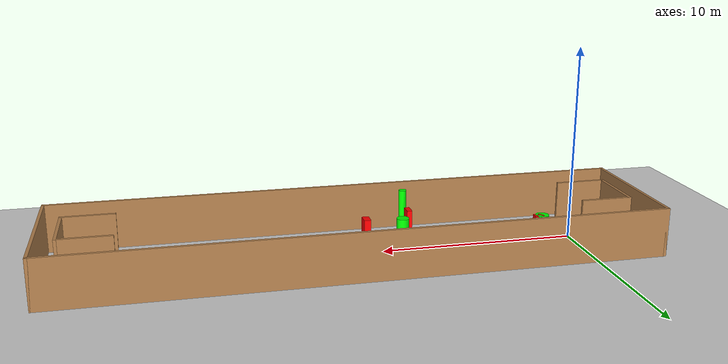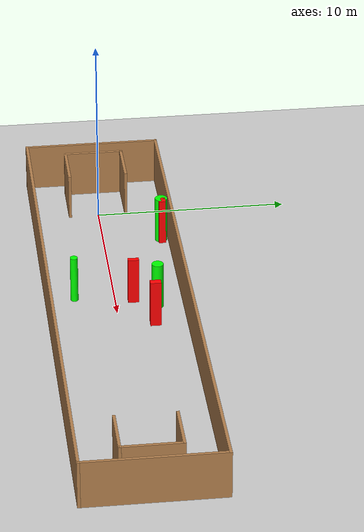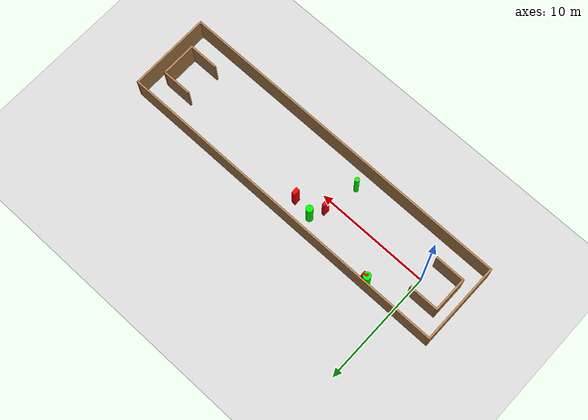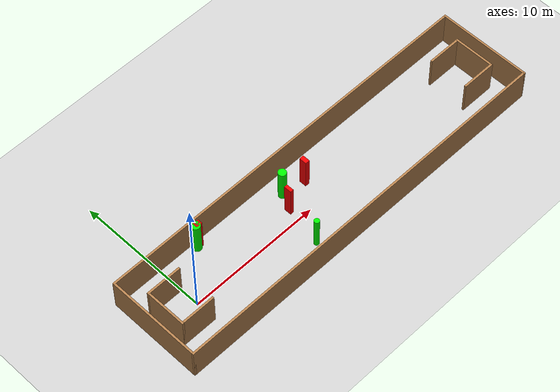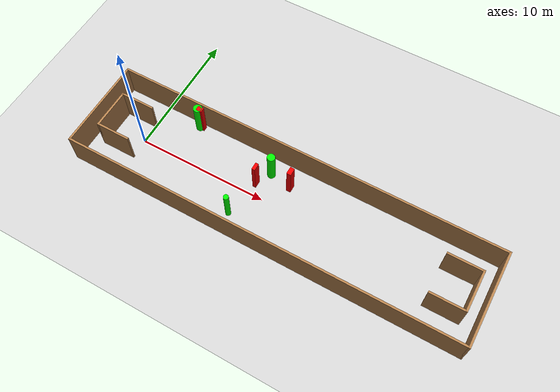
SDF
<sdf version="1.7">
 <world name="default">
  <light name="sun" type="directional">
   <pose>0 0 10 0 -0 0</pose>
   <diffuse>0.8 0.8 0.8 1</diffuse>
   <specular>0.2 0.2 0.2 1</specular>
   <attenuation>
    <range>1000</range>
    <constant>0.9</constant>
    <linear>0.01</linear>
    <quadratic>0.001</quadratic>
   </attenuation>
   <direction>-0.5 0.1 -0.9</direction>
   <spot><inner_angle>0</inner_angle><outer_angle>0</outer_angle><falloff>0</falloff></spot>
  </light>
  <model name="ground_plane">
   <static>1</static>
   <link name="link">
    <collision name="collision">
     <geometry><plane><normal>0 0 1</normal><size>100 100</size></plane></geometry>
     <surface>
      <contact><collide_bitmask>65535</collide_bitmask></contact>
      <friction><ode><mu>100</mu><mu2>50</mu2></ode></friction>
     </surface>
    </collision>
    <visual name="visual">
     <cast_shadows>0</cast_shadows>
     <geometry><plane><normal>0 0 1</normal><size>100 100</size></plane></geometry>
     <material>
      <script><uri>file://media/materials/scripts/gazebo.material</uri><name>Gazebo/Grey</name></script>
     </material>
    </visual>
   </link>
  </model>
  <gravity>0 0 -9.8</gravity>
  <magnetic_field>6e-06 2.3e-05 -4.2e-05</magnetic_field>
  <atmosphere type="adiabatic"/>
  <physics type="ode">
   <max_step_size>0.001</max_step_size>
   <real_time_factor>1</real_time_factor>
   <real_time_update_rate>1000</real_time_update_rate>
  </physics>
  <scene><ambient>0.4 0.4 0.4 1</ambient><background>0.7 0.7 0.7 1</background><shadows>1</shadows></scene>
  <spherical_coordinates>
   <surface_model>EARTH_WGS84</surface_model>
   <latitude_deg>0</latitude_deg>
   <longitude_deg>0</longitude_deg>
   <elevation>0</elevation>
   <heading_deg>0</heading_deg>
  </spherical_coordinates>
  <model name="my_base_walls">
   <link name="Wall_0">
    <collision name="Wall_0_Collision">
     <geometry><box><size>7.15 0.15 2.5</size></box></geometry>
     <pose>0 0 1.25 0 -0 0</pose>
    </collision>
    <visual name="Wall_0_Visual">
     <pose>0 0 1.25 0 -0 0</pose>
     <geometry><box><size>7.15 0.15 2.5</size></box></geometry>
     <material>
      <script><uri>file://media/materials/scripts/gazebo.material</uri><name>Gazebo/Wood</name></script>
      <ambient>1 1 1 1</ambient>
     </material>
     <meta><layer>0</layer></meta>
    </visual>
    <pose>-15 0 0 0 -0 1.5708</pose>
   </link>
   <link name="Wall_10">
    <collision name="Wall_10_Collision">
     <geometry><box><size>2.65 0.15 2.5</size></box></geometry>
     <pose>0 0 1.25 0 -0 0</pose>
    </collision>
    <visual name="Wall_10_Visual">
     <pose>0 0 1.25 0 -0 0</pose>
     <geometry><box><size>2.65 0.15 2.5</size></box></geometry>
     <material>
      <script><uri>file://media/materials/scripts/gazebo.material</uri><name>Gazebo/Wood</name></script>
      <ambient>1 1 1 1</ambient>
     </material>
     <meta><layer>0</layer></meta>
    </visual>
    <pose>-12.75 -1.5 0 0 -0 0</pose>
   </link>
   <link name="Wall_12">
    <collision name="Wall_12_Collision">
     <geometry><box><size>2.65 0.15 2.5</size></box></geometry>
     <pose>0 0 1.25 0 -0 0</pose>
    </collision>
    <visual name="Wall_12_Visual">
     <pose>0 0 1.25 0 -0 0</pose>
     <geometry><box><size>2.65 0.15 2.5</size></box></geometry>
     <material>
      <script><uri>file://media/materials/scripts/gazebo.material</uri><name>Gazebo/Wood</name></script>
      <ambient>1 1 1 1</ambient>
     </material>
     <meta><layer>0</layer></meta>
    </visual>
    <pose>-12.75 1.5 0 0 -0 0</pose>
   </link>
   <link name="Wall_14">
    <collision name="Wall_14_Collision">
     <geometry><box><size>3.15 0.15 2.5</size></box></geometry>
     <pose>0 0 1.25 0 -0 0</pose>
    </collision>
    <visual name="Wall_14_Visual">
     <pose>0 0 1.25 0 -0 0</pose>
     <geometry><box><size>3.15 0.15 2.5</size></box></geometry>
     <material>
      <script><uri>file://media/materials/scripts/gazebo.material</uri><name>Gazebo/Wood</name></script>
      <ambient>1 1 1 1</ambient>
     </material>
     <meta><layer>0</layer></meta>
    </visual>
    <pose>14 0 0 0 -0 -1.5708</pose>
   </link>
   <link name="Wall_15">
    <collision name="Wall_15_Collision">
     <geometry><box><size>2.65 0.15 2.5</size></box></geometry>
     <pose>0 0 1.25 0 -0 0</pose>
    </collision>
    <visual name="Wall_15_Visual">
     <pose>0 0 1.25 0 -0 0</pose>
     <geometry><box><size>2.65 0.15 2.5</size></box></geometry>
     <material>
      <script><uri>file://media/materials/scripts/gazebo.material</uri><name>Gazebo/Wood</name></script>
      <ambient>1 1 1 1</ambient>
     </material>
     <meta><layer>0</layer></meta>
    </visual>
    <pose>12.75 -1.5 0 0 -0 3.14159</pose>
   </link>
   <link name="Wall_17">
    <collision name="Wall_17_Collision">
     <geometry><box><size>2.65 0.15 2.5</size></box></geometry>
     <pose>0 0 1.25 0 -0 0</pose>
    </collision>
    <visual name="Wall_17_Visual">
     <pose>0 0 1.25 0 -0 0</pose>
     <geometry><box><size>2.65 0.15 2.5</size></box></geometry>
     <material>
      <script><uri>file://media/materials/scripts/gazebo.material</uri><name>Gazebo/Wood</name></script>
      <ambient>1 1 1 1</ambient>
     </material>
     <meta><layer>0</layer></meta>
    </visual>
    <pose>12.75 1.5 0 0 -0 3.14159</pose>
   </link>
   <link name="Wall_2">
    <collision name="Wall_2_Collision">
     <geometry><box><size>30.15 0.15 2.5</size></box></geometry>
     <pose>0 0 1.25 0 -0 0</pose>
    </collision>
    <visual name="Wall_2_Visual">
     <pose>0 0 1.25 0 -0 0</pose>
     <geometry><box><size>30.15 0.15 2.5</size></box></geometry>
     <material>
      <script><uri>file://media/materials/scripts/gazebo.material</uri><name>Gazebo/Wood</name></script>
      <ambient>1 1 1 1</ambient>
     </material>
     <meta><layer>0</layer></meta>
    </visual>
    <pose>-0 -3.5 0 0 -0 0</pose>
   </link>
   <link name="Wall_4">
    <collision name="Wall_4_Collision">
     <geometry><box><size>30.15 0.15 2.5</size></box></geometry>
     <pose>0 0 1.25 0 -0 0</pose>
    </collision>
    <visual name="Wall_4_Visual">
     <pose>0 0 1.25 0 -0 0</pose>
     <geometry><box><size>30.15 0.15 2.5</size></box></geometry>
     <material>
      <script><uri>file://media/materials/scripts/gazebo.material</uri><name>Gazebo/Wood</name></script>
      <ambient>1 1 1 1</ambient>
     </material>
     <meta><layer>0</layer></meta>
    </visual>
    <pose>-0 3.5 0 0 -0 0</pose>
   </link>
   <link name="Wall_6">
    <collision name="Wall_6_Collision">
     <geometry><box><size>7.15 0.15 2.5</size></box></geometry>
     <pose>0 0 1.25 0 -0 0</pose>
    </collision>
    <visual name="Wall_6_Visual">
     <pose>0 0 1.25 0 -0 0</pose>
     <geometry><box><size>7.15 0.15 2.5</size></box></geometry>
     <material>
      <script><uri>file://media/materials/scripts/gazebo.material</uri><name>Gazebo/Wood</name></script>
      <ambient>1 1 1 1</ambient>
     </material>
     <meta><layer>0</layer></meta>
    </visual>
    <pose>15 0 0 0 -0 -1.5708</pose>
   </link>
   <link name="Wall_9">
    <collision name="Wall_9_Collision">
     <geometry><box><size>3.15 0.15 2.5</size></box></geometry>
     <pose>0 0 1.25 0 -0 0</pose>
    </collision>
    <visual name="Wall_9_Visual">
     <pose>0 0 1.25 0 -0 0</pose>
     <geometry><box><size>3.15 0.15 2.5</size></box></geometry>
     <material>
      <script><uri>file://media/materials/scripts/gazebo.material</uri><name>Gazebo/Wood</name></script>
      <ambient>1 1 1 1</ambient>
     </material>
     <meta><layer>0</layer></meta>
    </visual>
    <pose>-14 0 0 0 -0 -1.5708</pose>
   </link>
   <static>1</static>
   <pose>11.5 0 0 0 -0 0</pose>
  </model>
  <model name="cylinder1">
   <static>1</static>
   <link name="link">
    <inertial>
     <mass>1</mass>
     <inertia><ixx>0.5</ixx><ixy>0</ixy><ixz>0</ixz><iyy>0.5</iyy><iyz>0</iyz><izz>1</izz></inertia>
    </inertial>
    <collision name="collision">
     <geometry><cylinder><radius>0.29814599940169506</radius><length>2.5</length></cylinder></geometry>
    </collision>
    <visual name="visual">
     <geometry><cylinder><radius>0.29814599940169506</radius><length>2.5</length></cylinder></geometry>
     <material>
      <ambient>0 1 0 1</ambient>
      <diffuse>0 1 0 1</diffuse>
      <specular>0.1 0.1 0.1 1</specular>
      <emissive>0 0 0 0</emissive>
     </material>
    </visual>
   </link>
   <pose>9.580051985688117 2.11082678725334 1.25 0 0 0</pose>
  </model>
  <model name="cylinder2">
   <static>1</static>
   <link name="link">
    <inertial>
     <mass>1</mass>
     <inertia><ixx>0.5</ixx><ixy>0</ixy><ixz>0</ixz><iyy>0.5</iyy><iyz>0</iyz><izz>1</izz></inertia>
    </inertial>
    <collision name="collision">
     <geometry><cylinder><radius>0.19727876108344133</radius><length>2.5</length></cylinder></geometry>
    </collision>
    <visual name="visual">
     <geometry><cylinder><radius>0.19727876108344133</radius><length>2.5</length></cylinder></geometry>
     <material>
      <ambient>0 1 0 1</ambient>
      <diffuse>0 1 0 1</diffuse>
      <specular>0.1 0.1 0.1 1</specular>
      <emissive>0 0 0 0</emissive>
     </material>
    </visual>
   </link>
   <pose>8.471565523540116 -2.044603061158049 1.25 0 0 0</pose>
  </model>
  <model name="cylinder3">
   <static>1</static>
   <link name="link">
    <inertial>
     <mass>1</mass>
     <inertia><ixx>0.5</ixx><ixy>0</ixy><ixz>0</ixz><iyy>0.5</iyy><iyz>0</iyz><izz>1</izz></inertia>
    </inertial>
    <collision name="collision">
     <geometry><cylinder><radius>0.3264760595483195</radius><length>2.5</length></cylinder></geometry>
    </collision>
    <visual name="visual">
     <geometry><cylinder><radius>0.3264760595483195</radius><length>2.5</length></cylinder></geometry>
     <material>
      <ambient>0 1 0 1</ambient>
      <diffuse>0 1 0 1</diffuse>
      <specular>0.1 0.1 0.1 1</specular>
      <emissive>0 0 0 0</emissive>
     </material>
    </visual>
   </link>
   <pose>2.923749768867742 3.0674589082351122 1.25 0 0 0</pose>
  </model>
  <model name="box1">
   <static>1</static>
   <link name="link">
    <inertial>
     <mass>1</mass>
     <inertia><ixx>0.083</ixx><ixy>0</ixy><ixz>0</ixz><iyy>0.083</iyy><iyz>0</iyz><izz>0.083</izz></inertia>
    </inertial>
    <collision name="collision">
     <geometry><box><size>0.3328748339940645 0.5548088656154488 2.5</size></box></geometry>
    </collision>
    <visual name="visual">
     <geometry><box><size>0.3328748339940645 0.5548088656154488 2.5</size></box></geometry>
     <material>
      <ambient>1 0 0 1</ambient>
      <diffuse>1 0 0 1</diffuse>
      <specular>0.1 0.1 0.1 1</specular>
      <emissive>0 0 0 0</emissive>
     </material>
    </visual>
    <sensor name="my_contact" type="contact">
     <contact><collision>box_collision</collision><topic>__default_topic__</topic></contact>
    </sensor>
   </link>
   <pose>11.289135335886062 1.8080280681737166 1.25 0 0 0</pose>
  </model>
  <model name="box2">
   <static>1</static>
   <link name="link">
    <inertial>
     <mass>1</mass>
     <inertia><ixx>0.083</ixx><ixy>0</ixy><ixz>0</ixz><iyy>0.083</iyy><iyz>0</iyz><izz>0.083</izz></inertia>
    </inertial>
    <collision name="collision">
     <geometry><box><size>0.45134706794257 0.3635534673508207 2.5</size></box></geometry>
    </collision>
    <visual name="visual">
     <geometry><box><size>0.45134706794257 0.3635534673508207 2.5</size></box></geometry>
     <material>
      <ambient>1 0 0 1</ambient>
      <diffuse>1 0 0 1</diffuse>
      <specular>0.1 0.1 0.1 1</specular>
      <emissive>0 0 0 0</emissive>
     </material>
    </visual>
    <sensor name="my_contact" type="contact">
     <contact><collision>box_collision</collision><topic>__default_topic__</topic></contact>
    </sensor>
   </link>
   <pose>3.103199229869519 3.0941766039396574 1.25 0 0 0</pose>
  </model>
  <model name="box3">
   <static>1</static>
   <link name="link">
    <inertial>
     <mass>1</mass>
     <inertia><ixx>0.083</ixx><ixy>0</ixy><ixz>0</ixz><iyy>0.083</iyy><iyz>0</iyz><izz>0.083</izz></inertia>
    </inertial>
    <collision name="collision">
     <geometry><box><size>0.25001697797500266 0.5640804489317708 2.5</size></box></geometry>
    </collision>
    <visual name="visual">
     <geometry><box><size>0.25001697797500266 0.5640804489317708 2.5</size></box></geometry>
     <material>
      <ambient>1 0 0 1</ambient>
      <diffuse>1 0 0 1</diffuse>
      <specular>0.1 0.1 0.1 1</specular>
      <emissive>0 0 0 0</emissive>
     </material>
    </visual>
    <sensor name="my_contact" type="contact">
     <contact><collision>box_collision</collision><topic>__default_topic__</topic></contact>
    </sensor>
   </link>
   <pose>8.992007308397504 0.9365593052930477 1.25 0 0 0</pose>
  </model>
 </world>
</sdf>
